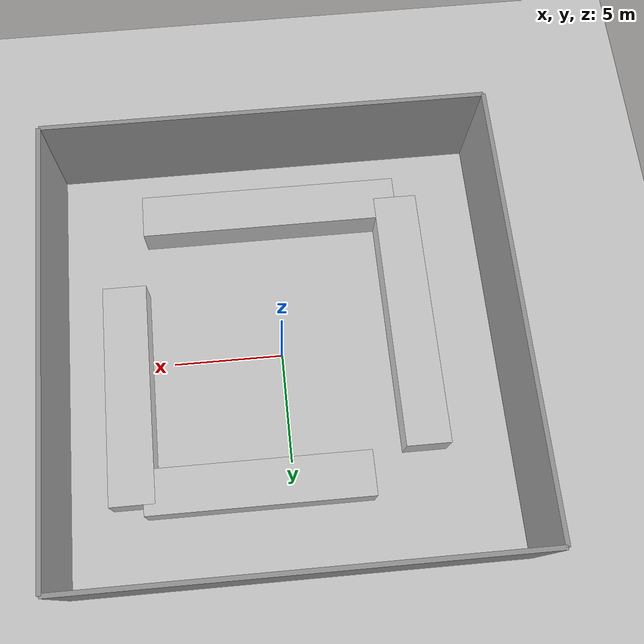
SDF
<?xml version="1.0" ?>
<sdf version="1.7">
  <world name="large_factory">

    <!-- Ground Plane -->
    <include>
      <uri>model://ground_plane</uri>
    </include>

    <!-- Sun Light -->
    <include>
      <uri>model://sun</uri>
    </include>

    <!-- Factory Walls (Carefully Positioned to Form a Closed Room) -->

    <!-- Wall NORTH: Runs along the positive Y axis -->
    <model name="wall_north">
      <static>true</static>
      <pose>0 10 2.5 0 0 0</pose> <!-- Centered at X=0, Y=10 (positive), Z=2.5 (half height) -->
      <link name="link">
        <visual name="visual">
          <geometry>
            <box>
              <size>20 0.2 5</size> <!-- Length=20, Thickness=0.2, Height=5 -->
            </box>
          </geometry>
          <material>
            <ambient>0.6 0.6 0.6 1</ambient>
            <diffuse>0.6 0.6 0.6 1</diffuse>
            <specular>0.1 0.1 0.1 1</specular>
          </material>
        </visual>
        <collision name="collision">
          <geometry>
            <box>
              <size>20 0.2 5</size>
            </box>
          </geometry>
        </collision>
      </link>
    </model>

    <!-- Wall SOUTH: Runs along the negative Y axis -->
    <model name="wall_south">
      <static>true</static>
      <pose>0 -10 2.5 0 0 0</pose> <!-- Centered at X=0, Y=-10 (negative), Z=2.5 -->
      <link name="link">
        <visual name="visual">
          <geometry>
            <box>
              <size>20 0.2 5</size> <!-- Same dimensions as NORTH -->
            </box>
          </geometry>
          <material>
            <ambient>0.6 0.6 0.6 1</ambient>
            <diffuse>0.6 0.6 0.6 1</diffuse>
            <specular>0.1 0.1 0.1 1</specular>
          </material>
        </visual>
        <collision name="collision">
          <geometry>
            <box>
              <size>20 0.2 5</size>
            </box>
          </geometry>
        </collision>
      </link>
    </model>

    <!-- Wall EAST: Runs along the positive X axis -->
    <model name="wall_east">
      <static>true</static>
      <pose>10 0 2.5 0 0 1.57079632679</pose>  <!-- Centered at X=10 (positive), Y=0, Z=2.5, ROTATED 90 degrees -->
      <link name="link">
        <visual name="visual">
          <geometry>
            <box>
              <size>20 0.2 5</size>  <!-- Same dimensions -->
            </box>
          </geometry>
          <material>
            <ambient>0.6 0.6 0.6 1</ambient>
            <diffuse>0.6 0.6 0.6 1</diffuse>
            <specular>0.1 0.1 0.1 1</specular>
          </material>
        </visual>
        <collision name="collision">
          <geometry>
            <box>
              <size>20 0.2 5</size>
            </box>
          </geometry>
        </collision>
      </link>
    </model>

    <!-- Wall WEST: Runs along the negative X axis -->
    <model name="wall_west">
      <static>true</static>
      <pose>-10 0 2.5 0 0 1.57079632679</pose>  <!-- Centered at X=-10 (negative), Y=0, Z=2.5, ROTATED 90 degrees -->
      <link name="link">
        <visual name="visual">
          <geometry>
            <box>
              <size>20 0.2 5</size>  <!-- Same dimensions -->
            </box>
          </geometry>
          <material>
            <ambient>0.6 0.6 0.6 1</ambient>
            <ambient>0.6 0.6 0.6 1</ambient>
            <specular>0.1 0.1 0.1 1</specular>
          </material>
        </visual>
        <collision name="collision">
          <geometry>
            <box>
              <size>20 0.2 5</size>
            </box>
          </geometry>
        </collision>
      </link>
    </model>

    <!-- Stockpiles of Cartons (Inside the Enclosed Area) -->

    <model name="stockpile_01">
      <static>true</static>
      <pose>-6 -1 0.5 0 0 0</pose>
      <link name="link">
        <visual name="visual">
          <geometry>
            <box>
              <size>2 12 2</size>
            </box>
          </geometry>
          <material>
            <ambient>0.8 0.8 0.8 1</ambient>
            <diffuse>0.8 0.8 0.8 1</diffuse>
            <specular>0.1 0.1 0.1 1</specular>
          </material>
        </visual>
        <collision name="collision">
          <geometry>
            <box>
              <size>2 12 2</size>
            </box>
          </geometry>
        </collision>
      </link>
    </model>

    <model name="stockpile_02">
      <static>true</static>
      <pose>-0 -7 0.5 0 0 0</pose>
      <link name="link">
        <visual name="visual">
          <geometry>
            <box>
              <size>12 2 2</size>
            </box>
          </geometry>
          <material>
            <ambient>0.8 0.8 0.8 1</ambient>
            <diffuse>0.8 0.8 0.8 1</diffuse>
            <specular>0.1 0.1 0.1 1</specular>
          </material>
        </visual>
        <collision name="collision">
          <geometry>
            <box>
              <size>12 2 2</size>
            </box>
          </geometry>
        </collision>
      </link>
    </model>

    <model name="stockpile_03">
      <static>true</static>
      <pose>7 1.5 0.5 0 0 0</pose>
      <link name="link">
        <visual name="visual">
          <geometry>
            <box>
              <size>2 10 2</size>
            </box>
          </geometry>
          <material>
            <ambient>0.8 0.8 0.8 1</ambient>
            <diffuse>0.8 0.8 0.8 1</diffuse>
            <specular>0.1 0.1 0.1 1</specular>
          </material>
        </visual>
        <collision name="collision">
          <geometry>
            <box>
              <size>2 10 2</size>
            </box>
          </geometry>
        </collision>
      </link>
    </model>

    <model name="stockpile_04">
      <static>true</static>
      <pose>1.5 6 0.5 0 0 0</pose>
      <link name="link">
        <visual name="visual">
          <geometry>
            <box>
              <size>10 2 2</size>
            </box>
          </geometry>
          <material>
            <ambient>0.8 0.8 0.8 1</ambient>
            <diffuse>0.8 0.8 0.8 1</diffuse>
            <specular>0.1 0.1 0.1 1</specular>
          </material>
        </visual>
        <collision name="collision">
          <geometry>
            <box>
              <size>10 2 2</size>
            </box>
          </geometry>
        </collision>
      </link>
    </model>

    <!--  Add more models and features here -->

  </world>
</sdf>
